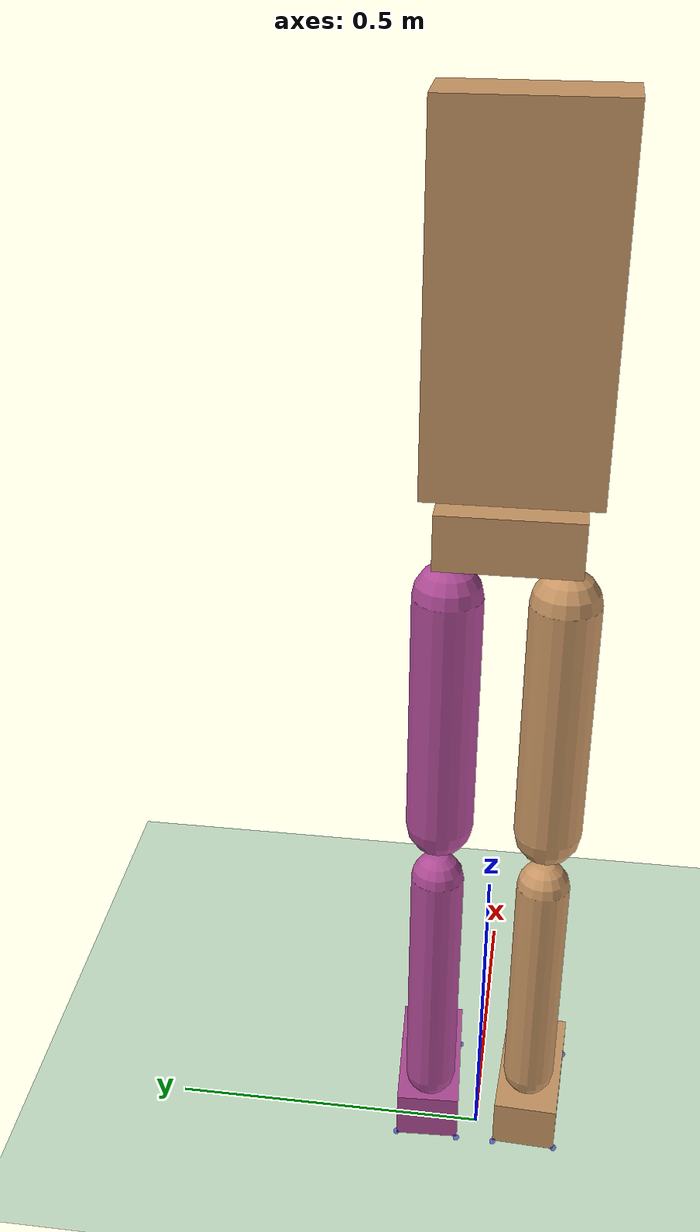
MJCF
<mujoco model="walker_165cm_65kg">
  <compiler angle="radian" coordinate="local" inertiafromgeom="false"/>
  <visual>
	    <scale framelength='0.5' framewidth='0.0075' forcewidth='0.0075' contactwidth='0.1' contactheight='0.01'/>
  </visual>
  <default>
    <joint armature="0.01" limited="true" />
    <motor ctrllimited="true" ctrlrange="-300 300" gear="1" forcelimited="true" forcerange="-300 300"/>
    <geom conaffinity="0" condim="3" contype="1" density="1000" friction=".7 .1 .1" rgba="0.8 0.6 .4 1"/>
  </default>
  <option integrator="RK4" timestep="0.001"/>
  <worldbody>
    <light cutoff="100" diffuse="1 1 1" dir="-0 0 -1.3" directional="true" exponent="1" pos="0 0 1.3" specular=".1 .1 .1"/>
    <geom conaffinity="1" condim="3" name="floor" pos="0 0 0" rgba="0.8 0.9 0.8 1" size="40 40 0.125" type="plane" material="MatPlane"/>
    <body name="pelvis" pos="0 0 1.035">
      <inertial pos="0 0 0" mass="10.87" diaginertia="0.51 0.82 0.31"/>
      <geom friction="0.9" name="pelvis" size="0.05 0.1 0.04" pos="0 0 0.05" type="box"/>
      <camera name="track_pelvis" mode="trackcom" pos="0 -4 0" xyaxes="1 0 0 0 0 1"/>
      <joint name="pelvis_tx" armature="0" axis="1 0 0" damping="0" limited="false"  pos="0 0 0" stiffness="0" type="slide"/>
      <joint name="pelvis_tz" armature="0" axis="0 -1 0" damping="0" limited="false" pos="0 0 0" stiffness="0" type="slide"/>
      <joint name="pelvis_ty" armature="0" axis="0 0 1" damping="0" limited="false" pos="0 0 0" ref="1.035" stiffness="0" type="slide"/>
      <joint name="pelvis_list" armature="0" axis="1 0 0" damping="0" limited="false" pos="0 0 0" stiffness="0" type="hinge"/>
      <joint name="pelvis_tilt" armature="0" axis="0 -1 0" damping="0" limited="false" pos="0 0 0" stiffness="0" type="hinge"/>
      <joint name="pelvis_rotation" armature="0" axis="0 0 1" damping="0" limited="false" pos="0 0 0" stiffness="0" type="hinge"/>
      <body name="torso" pos="0 0 0.1075"> <!-- height of the pelvis + 2.5cm gap -->
        <inertial pos="0 0 0.2475" mass="32.5" diaginertia="1.875 3.0 1.125"/>
        <geom friction="0.9" name="torso" type="box" size="0.05 0.12 0.2475" pos="0 0 0.2475"/>
        <joint name="lumbar_bending" armature="0" axis="1 0 0" damping="0" range="-0.2 0.15" pos="0 0 0" stiffness="0" type="hinge"/>
        <joint name="lumbar_extension" armature="0" axis="0 -1 0" damping="0" range="-0.15 0.15" pos="0 0 0" stiffness="0" type="hinge"/>
        <joint name="lumbar_rotation" armature="0" axis="0 0 1" damping="0" range="-0.15 0.15" pos="0 0 0" stiffness="0" type="hinge"/>
      </body>
      <body name="thigh_right" pos="0 -0.08 0">
        <inertial pos="0 0 -0.2136" mass="6.9" diaginertia="0.122 0.122 0.024"/>
        <joint axis="0 -1 0" name="hip_flexion_r" damping="28" range="-0.8727 0.8727" type="hinge"/>
        <joint axis="1 0 0" name="hip_adduction_r" damping="28" range="-0.7854 0.0873" type="hinge"/>
        <joint axis="0 0 -1" name="hip_rotation_r" damping="28" range="-0.26 0.26" type="hinge"/>
        <geom friction="0.9" fromto="0 0 -0.05 0 0 -0.4272" name="thigh_geom" size="0.05" type="capsule"/>
        <body name="shank_right" pos="0 0 -0.4772">
          <inertial pos="0 0 -0.2136" mass="2.8" diaginertia="0.04 0.04 0.0024"/>
          <joint axis="0 -1 0" name="knee_angle_r" damping="12" range="-2.6180 0." type="hinge"/>
          <geom friction="0.9" fromto="0 0 -0.05 0 0 -0.4272" name="leg_geom" size="0.04" type="capsule"/>
          <body name="foot_right" pos="0 0 -0.4772">
            <inertial pos="0.06 0 -0.07" mass="1.2" diaginertia="0.003 0.006 0.005"/>
            <joint axis="0 1 0" name="ankle_angle_r" damping="20"  range="-0.3491 0.6981" type="hinge"/>
            <geom friction="0.9" axisangle="0 0 1 -.05" name="right_foot" size="0.11 0.05 0.04" pos="0.0675 -0.005 -0.04" type="box"/>
            <site name='right_foot_front_left' type="sphere" size="0.005" pos="0.1775 0.04 -0.08" rgba="0 0 .99 0.5" />
            <site name='right_foot_front_right' type="sphere" size="0.005" pos="0.1775 -0.06 -0.08" rgba="0 0 .99 0.5" />
            <site name='right_foot_back_left' type="sphere" size="0.005" pos="-0.0425 0.05 -0.08" rgba="0 0 .99 0.5" />
            <site name='right_foot_back_right' type="sphere" size="0.005" pos="-0.0425 -0.05 -0.08" rgba="0 0 .99 0.5" />
          </body>
        </body>
      </body>
      <!-- copied and then replace thigh->thigh_left, leg->leg_left, foot->foot_right -->
      <body name="thigh_left" pos="0 0.08 0">
        <inertial pos="0 0 -0.2136" mass="6.9" diaginertia="0.122 0.122 0.024"/>
        <joint axis="0 -1 0" name="hip_flexion_l" damping="28" range="-0.8727 0.8727" type="hinge"/>
        <joint axis="-1 0 0" name="hip_adduction_l" damping="28" range="-0.7854 0.0873" type="hinge"/>
        <joint axis="0 0 -1" name="hip_rotation_l" damping="28" range="-0.26 0.26" type="hinge"/>
        <geom friction="0.9" fromto="0 0 -0.05 0 0 -0.4272" name="thigh_left_geom" rgba=".7 .3 .6 1" size="0.05" type="capsule"/>
        <body name="shank_left" pos="0 0 -0.4772">
          <inertial pos="0 0 -0.2136" mass="2.8" diaginertia="0.04 0.04 0.0024"/>
          <joint axis="0 -1 0" name="knee_angle_l" damping="12" range="-2.6180 0."  type="hinge"/>
          <geom friction="0.9" fromto="0 0 -0.05 0 0 -0.45" name="leg_left_geom" rgba=".7 .3 .6 1" size="0.04" type="capsule"/>
          <body name="foot_left" pos="0 0 -0.4772">
            <inertial pos="0.06 0 -0.07" mass="1.2" diaginertia="0.003 0.006 0.005"/>
            <joint axis="0 -1 0" name="ankle_angle_l" damping="20" range="-0.6981 0.3491" type="hinge"/>
            <geom friction="0.9" axisangle="0 0 1 .05" name="left_foot" size="0.11 0.05 0.04" pos="0.0675 0.005 -0.04" rgba=".7 .3 .6 1" type="box"/>
            <site name='left_foot_front_left' type="sphere" size="0.005" pos="0.1775 0.06 -0.08" rgba="0 0 .99 0.5" />
            <site name='left_foot_front_right' type="sphere" size="0.005" pos="0.1775 -0.04 -0.08" rgba="0 0 .99 0.5" />
            <site name='left_foot_back_left' type="sphere" size="0.005" pos="-0.0425 0.05 -0.08" rgba="0 0 .99 0.5" />
            <site name='left_foot_back_right' type="sphere" size="0.005" pos="-0.0425 -0.05 -0.08" rgba="0 0 .99 0.5" />
          </body>
        </body>
      </body>
    </body>
  </worldbody>
  <actuator>
    <motor joint="lumbar_extension"/>
    <motor joint="lumbar_bending"/>
    <motor joint="lumbar_rotation"/>
    <motor joint="hip_flexion_r"/>
    <motor joint="hip_adduction_r"/>
    <motor joint="hip_rotation_r"/>
    <motor joint="knee_angle_r"/>
    <motor joint="ankle_angle_r"/>
    <motor joint="hip_flexion_l"/>
    <motor joint="hip_adduction_l"/>
    <motor joint="hip_rotation_l"/>
    <motor joint="knee_angle_l"/>
    <motor joint="ankle_angle_l"/>
  </actuator>
    <asset>
        <texture type="skybox" builtin="gradient" rgb1=".4 .5 .6" rgb2="0 0 0"
            width="100" height="100"/>
        <texture builtin="flat" height="1278" mark="cross" markrgb="1 1 1" name="texgeom" random="0.01" rgb1="0.8 0.6 0.4" rgb2="0.8 0.6 0.4" type="cube" width="127"/>
        <texture builtin="checker" height="100" name="texplane" rgb1="0 0 0" rgb2="0.8 0.8 0.8" type="2d" width="100"/>
        <material name="MatPlane" reflectance="0.5" shininess="1" specular="1" texrepeat="60 60" texture="texplane"/>
        <material name="geom" texture="texgeom" texuniform="true"/>
    </asset>
</mujoco>
